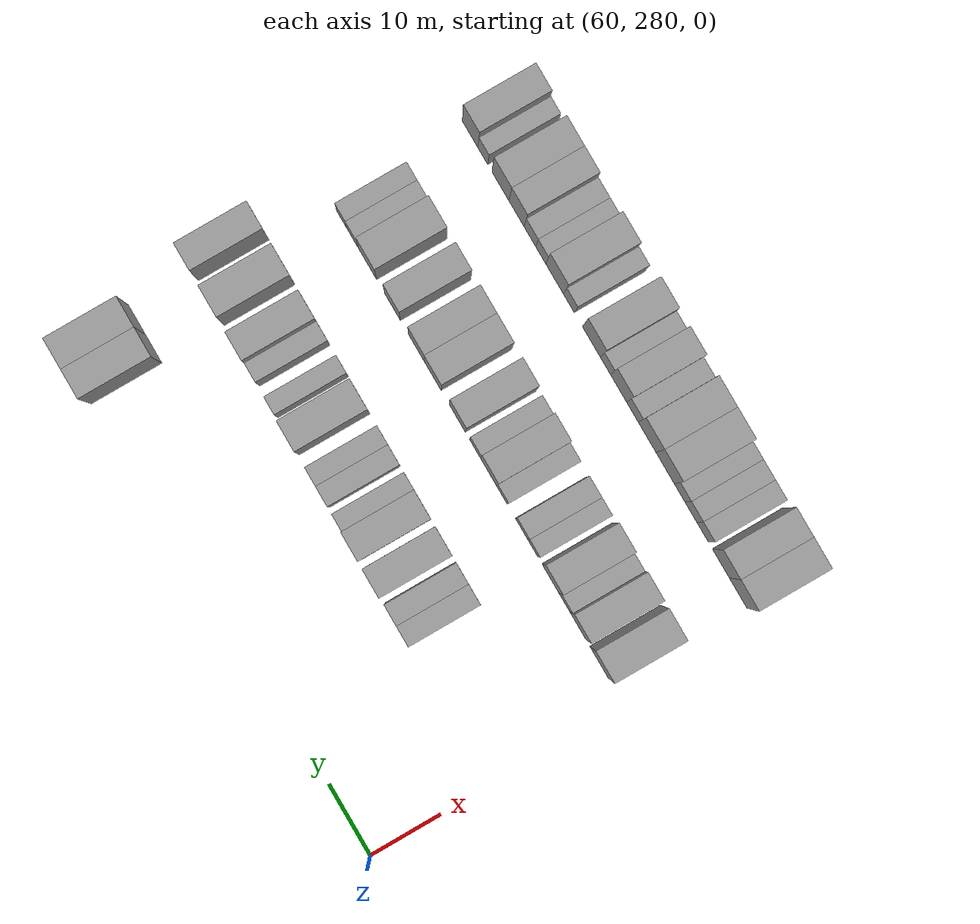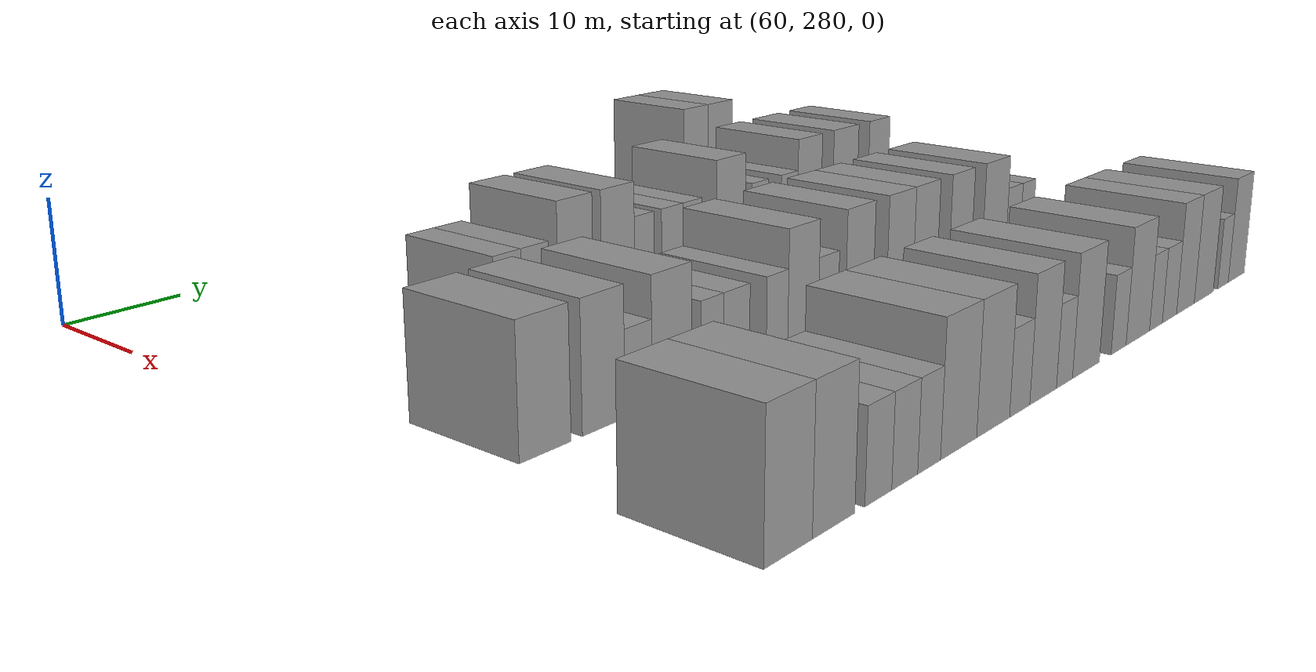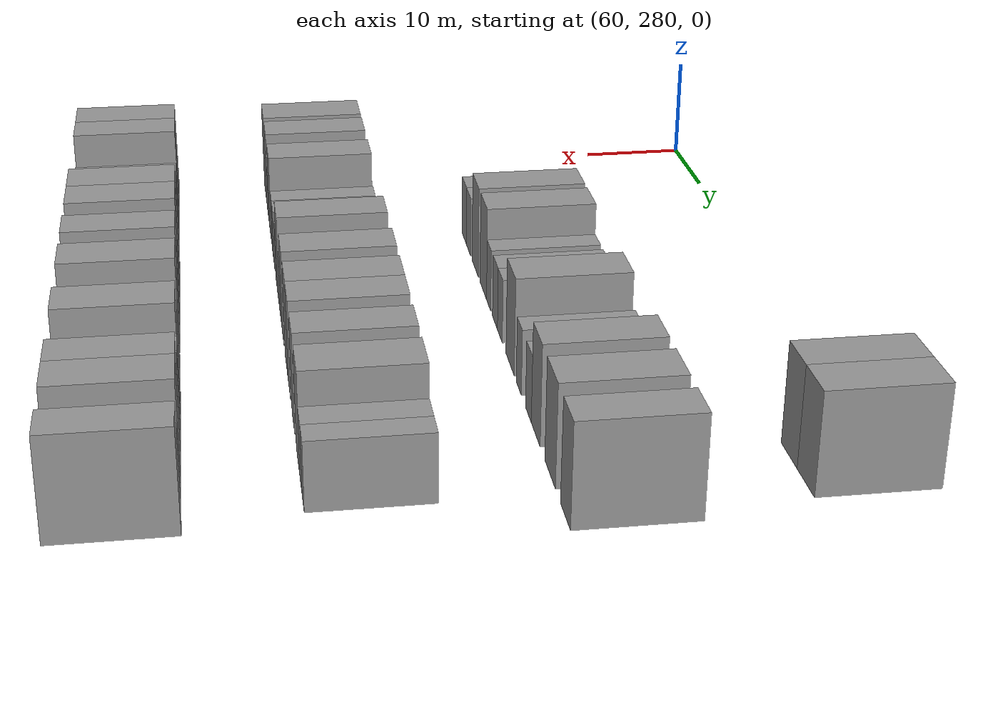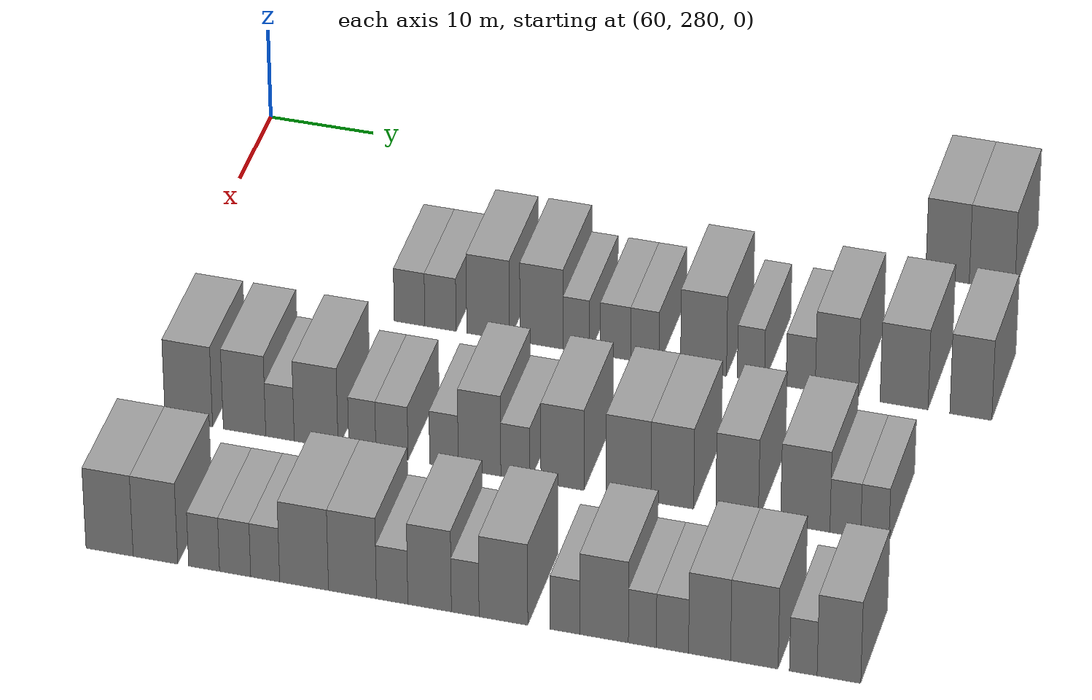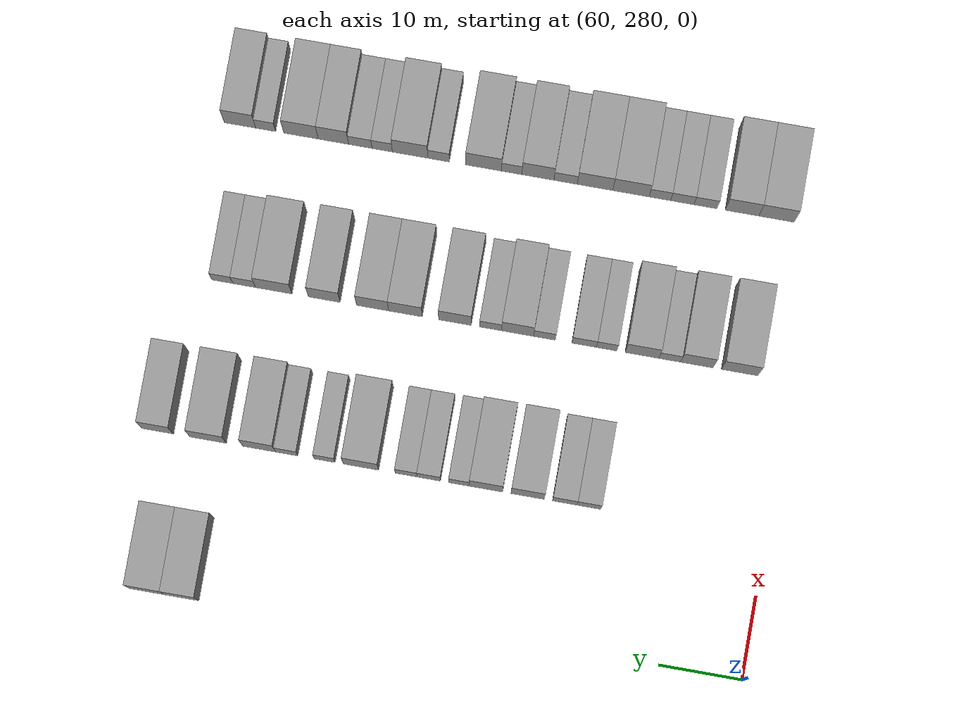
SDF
<sdf version="1.6">
 <world name="default">
  <model name="building_520">
   <static>1</static>
   <pose>63.0000 347.0267 0 0.000000 0.000000 0.000000</pose>
   <link name="link">
    <pose>0 0 4.50 0 0 0</pose>
    <collision name="collision"><geometry><box><size>10.0000 4.0749 9.0000</size></box></geometry></collision>
    <visual name="visual">
     <cast_shadows>0</cast_shadows>
     <geometry><box><size>10.0000 4.0749 9.0000</size></box></geometry>
     <material>
      <script>
       <uri>model://grey_wall/materials/scripts</uri>
       <uri>model://grey_wall/materials/textures</uri>
       <name>vrc/grey_wall</name>
      </script>
     </material>
    </visual>
   </link>
  </model>
  <model name="building_521">
   <static>1</static>
   <pose>63.0000 351.1937 0 0.000000 0.000000 0.000000</pose>
   <link name="link">
    <pose>0 0 4.50 0 0 0</pose>
    <collision name="collision"><geometry><box><size>10.0000 4.2590 9.0000</size></box></geometry></collision>
    <visual name="visual">
     <cast_shadows>0</cast_shadows>
     <geometry><box><size>10.0000 4.2590 9.0000</size></box></geometry>
     <material>
      <script>
       <uri>model://grey_wall/materials/scripts</uri>
       <uri>model://grey_wall/materials/textures</uri>
       <name>vrc/grey_wall</name>
      </script>
     </material>
    </visual>
   </link>
  </model>
  <model name="building_683">
   <static>1</static>
   <pose>82.0000 301.3612 0 0.000000 0.000000 0.000000</pose>
   <link name="link">
    <pose>0 0 3.00 0 0 0</pose>
    <collision name="collision"><geometry><box><size>10.0000 2.8845 6.0000</size></box></geometry></collision>
    <visual name="visual">
     <cast_shadows>0</cast_shadows>
     <geometry><box><size>10.0000 2.8845 6.0000</size></box></geometry>
     <material>
      <script>
       <uri>model://grey_wall/materials/scripts</uri>
       <uri>model://grey_wall/materials/textures</uri>
       <name>vrc/grey_wall</name>
      </script>
     </material>
    </visual>
   </link>
  </model>
  <model name="building_684">
   <static>1</static>
   <pose>82.0000 304.2771 0 0.000000 0.000000 0.000000</pose>
   <link name="link">
    <pose>0 0 3.00 0 0 0</pose>
    <collision name="collision"><geometry><box><size>10.0000 2.9472 6.0000</size></box></geometry></collision>
    <visual name="visual">
     <cast_shadows>0</cast_shadows>
     <geometry><box><size>10.0000 2.9472 6.0000</size></box></geometry>
     <material>
      <script>
       <uri>model://grey_wall/materials/scripts</uri>
       <uri>model://grey_wall/materials/textures</uri>
       <name>vrc/grey_wall</name>
      </script>
     </material>
    </visual>
   </link>
  </model>
  <model name="building_685">
   <static>1</static>
   <pose>82.0000 308.7541 0 0.000000 0.000000 0.000000</pose>
   <link name="link">
    <pose>0 0 4.50 0 0 0</pose>
    <collision name="collision"><geometry><box><size>10.0000 4.0069 9.0000</size></box></geometry></collision>
    <visual name="visual">
     <cast_shadows>0</cast_shadows>
     <geometry><box><size>10.0000 4.0069 9.0000</size></box></geometry>
     <material>
      <script>
       <uri>model://grey_wall/materials/scripts</uri>
       <uri>model://grey_wall/materials/textures</uri>
       <name>vrc/grey_wall</name>
      </script>
     </material>
    </visual>
   </link>
  </model>
  <model name="building_686">
   <static>1</static>
   <pose>82.0000 313.7742 0 0.000000 0.000000 0.000000</pose>
   <link name="link">
    <pose>0 0 4.50 0 0 0</pose>
    <collision name="collision"><geometry><box><size>10.0000 4.0332 9.0000</size></box></geometry></collision>
    <visual name="visual">
     <cast_shadows>0</cast_shadows>
     <geometry><box><size>10.0000 4.0332 9.0000</size></box></geometry>
     <material>
      <script>
       <uri>model://grey_wall/materials/scripts</uri>
       <uri>model://grey_wall/materials/textures</uri>
       <name>vrc/grey_wall</name>
      </script>
     </material>
    </visual>
   </link>
  </model>
  <model name="building_687">
   <static>1</static>
   <pose>82.0000 317.0277 0 0.000000 0.000000 0.000000</pose>
   <link name="link">
    <pose>0 0 3.00 0 0 0</pose>
    <collision name="collision"><geometry><box><size>10.0000 2.4738 6.0000</size></box></geometry></collision>
    <visual name="visual">
     <cast_shadows>0</cast_shadows>
     <geometry><box><size>10.0000 2.4738 6.0000</size></box></geometry>
     <material>
      <script>
       <uri>model://grey_wall/materials/scripts</uri>
       <uri>model://grey_wall/materials/textures</uri>
       <name>vrc/grey_wall</name>
      </script>
     </material>
    </visual>
   </link>
  </model>
  <model name="building_688">
   <static>1</static>
   <pose>82.0000 320.6768 0 0.000000 0.000000 0.000000</pose>
   <link name="link">
    <pose>0 0 3.00 0 0 0</pose>
    <collision name="collision"><geometry><box><size>10.0000 2.8245 6.0000</size></box></geometry></collision>
    <visual name="visual">
     <cast_shadows>0</cast_shadows>
     <geometry><box><size>10.0000 2.8245 6.0000</size></box></geometry>
     <material>
      <script>
       <uri>model://grey_wall/materials/scripts</uri>
       <uri>model://grey_wall/materials/textures</uri>
       <name>vrc/grey_wall</name>
      </script>
     </material>
    </visual>
   </link>
  </model>
  <model name="building_689">
   <static>1</static>
   <pose>82.0000 323.4099 0 0.000000 0.000000 0.000000</pose>
   <link name="link">
    <pose>0 0 3.00 0 0 0</pose>
    <collision name="collision"><geometry><box><size>10.0000 2.6417 6.0000</size></box></geometry></collision>
    <visual name="visual">
     <cast_shadows>0</cast_shadows>
     <geometry><box><size>10.0000 2.6417 6.0000</size></box></geometry>
     <material>
      <script>
       <uri>model://grey_wall/materials/scripts</uri>
       <uri>model://grey_wall/materials/textures</uri>
       <name>vrc/grey_wall</name>
      </script>
     </material>
    </visual>
   </link>
  </model>
  <model name="building_690">
   <static>1</static>
   <pose>82.0000 328.8628 0 0.000000 0.000000 0.000000</pose>
   <link name="link">
    <pose>0 0 4.50 0 0 0</pose>
    <collision name="collision"><geometry><box><size>10.0000 4.2643 9.0000</size></box></geometry></collision>
    <visual name="visual">
     <cast_shadows>0</cast_shadows>
     <geometry><box><size>10.0000 4.2643 9.0000</size></box></geometry>
     <material>
      <script>
       <uri>model://grey_wall/materials/scripts</uri>
       <uri>model://grey_wall/materials/textures</uri>
       <name>vrc/grey_wall</name>
      </script>
     </material>
    </visual>
   </link>
  </model>
  <model name="building_691">
   <static>1</static>
   <pose>82.0000 333.2507 0 0.000000 0.000000 0.000000</pose>
   <link name="link">
    <pose>0 0 3.00 0 0 0</pose>
    <collision name="collision"><geometry><box><size>10.0000 2.5115 6.0000</size></box></geometry></collision>
    <visual name="visual">
     <cast_shadows>0</cast_shadows>
     <geometry><box><size>10.0000 2.5115 6.0000</size></box></geometry>
     <material>
      <script>
       <uri>model://grey_wall/materials/scripts</uri>
       <uri>model://grey_wall/materials/textures</uri>
       <name>vrc/grey_wall</name>
      </script>
     </material>
    </visual>
   </link>
  </model>
  <model name="building_692">
   <static>1</static>
   <pose>82.0000 337.8518 0 0.000000 0.000000 0.000000</pose>
   <link name="link">
    <pose>0 0 3.00 0 0 0</pose>
    <collision name="collision"><geometry><box><size>10.0000 2.6907 6.0000</size></box></geometry></collision>
    <visual name="visual">
     <cast_shadows>0</cast_shadows>
     <geometry><box><size>10.0000 2.6907 6.0000</size></box></geometry>
     <material>
      <script>
       <uri>model://grey_wall/materials/scripts</uri>
       <uri>model://grey_wall/materials/textures</uri>
       <name>vrc/grey_wall</name>
      </script>
     </material>
    </visual>
   </link>
  </model>
  <model name="building_693">
   <static>1</static>
   <pose>82.0000 341.1807 0 0.000000 0.000000 0.000000</pose>
   <link name="link">
    <pose>0 0 4.50 0 0 0</pose>
    <collision name="collision"><geometry><box><size>10.0000 3.9673 9.0000</size></box></geometry></collision>
    <visual name="visual">
     <cast_shadows>0</cast_shadows>
     <geometry><box><size>10.0000 3.9673 9.0000</size></box></geometry>
     <material>
      <script>
       <uri>model://grey_wall/materials/scripts</uri>
       <uri>model://grey_wall/materials/textures</uri>
       <name>vrc/grey_wall</name>
      </script>
     </material>
    </visual>
   </link>
  </model>
  <model name="building_694">
   <static>1</static>
   <pose>82.0000 347.3627 0 0.000000 0.000000 0.000000</pose>
   <link name="link">
    <pose>0 0 4.50 0 0 0</pose>
    <collision name="collision"><geometry><box><size>10.0000 4.3966 9.0000</size></box></geometry></collision>
    <visual name="visual">
     <cast_shadows>0</cast_shadows>
     <geometry><box><size>10.0000 4.3966 9.0000</size></box></geometry>
     <material>
      <script>
       <uri>model://grey_wall/materials/scripts</uri>
       <uri>model://grey_wall/materials/textures</uri>
       <name>vrc/grey_wall</name>
      </script>
     </material>
    </visual>
   </link>
  </model>
  <model name="building_695">
   <static>1</static>
   <pose>82.0000 353.4793 0 0.000000 0.000000 0.000000</pose>
   <link name="link">
    <pose>0 0 4.50 0 0 0</pose>
    <collision name="collision"><geometry><box><size>10.0000 3.8367 9.0000</size></box></geometry></collision>
    <visual name="visual">
     <cast_shadows>0</cast_shadows>
     <geometry><box><size>10.0000 3.8367 9.0000</size></box></geometry>
     <material>
      <script>
       <uri>model://grey_wall/materials/scripts</uri>
       <uri>model://grey_wall/materials/textures</uri>
       <name>vrc/grey_wall</name>
      </script>
     </material>
    </visual>
   </link>
  </model>
  <model name="building_854">
   <static>1</static>
   <pose>101.0000 286.3800 0 0.000000 0.000000 0.000000</pose>
   <link name="link">
    <pose>0 0 4.50 0 0 0</pose>
    <collision name="collision"><geometry><box><size>10.0000 4.4240 9.0000</size></box></geometry></collision>
    <visual name="visual">
     <cast_shadows>0</cast_shadows>
     <geometry><box><size>10.0000 4.4240 9.0000</size></box></geometry>
     <material>
      <script>
       <uri>model://grey_wall/materials/scripts</uri>
       <uri>model://grey_wall/materials/textures</uri>
       <name>vrc/grey_wall</name>
      </script>
     </material>
    </visual>
   </link>
  </model>
  <model name="building_855">
   <static>1</static>
   <pose>101.0000 291.5675 0 0.000000 0.000000 0.000000</pose>
   <link name="link">
    <pose>0 0 4.50 0 0 0</pose>
    <collision name="collision"><geometry><box><size>10.0000 3.9511 9.0000</size></box></geometry></collision>
    <visual name="visual">
     <cast_shadows>0</cast_shadows>
     <geometry><box><size>10.0000 3.9511 9.0000</size></box></geometry>
     <material>
      <script>
       <uri>model://grey_wall/materials/scripts</uri>
       <uri>model://grey_wall/materials/textures</uri>
       <name>vrc/grey_wall</name>
      </script>
     </material>
    </visual>
   </link>
  </model>
  <model name="building_856">
   <static>1</static>
   <pose>101.0000 294.8647 0 0.000000 0.000000 0.000000</pose>
   <link name="link">
    <pose>0 0 3.00 0 0 0</pose>
    <collision name="collision"><geometry><box><size>10.0000 2.6434 6.0000</size></box></geometry></collision>
    <visual name="visual">
     <cast_shadows>0</cast_shadows>
     <geometry><box><size>10.0000 2.6434 6.0000</size></box></geometry>
     <material>
      <script>
       <uri>model://grey_wall/materials/scripts</uri>
       <uri>model://grey_wall/materials/textures</uri>
       <name>vrc/grey_wall</name>
      </script>
     </material>
    </visual>
   </link>
  </model>
  <model name="building_857">
   <static>1</static>
   <pose>101.0000 298.2179 0 0.000000 0.000000 0.000000</pose>
   <link name="link">
    <pose>0 0 4.50 0 0 0</pose>
    <collision name="collision"><geometry><box><size>10.0000 4.0630 9.0000</size></box></geometry></collision>
    <visual name="visual">
     <cast_shadows>0</cast_shadows>
     <geometry><box><size>10.0000 4.0630 9.0000</size></box></geometry>
     <material>
      <script>
       <uri>model://grey_wall/materials/scripts</uri>
       <uri>model://grey_wall/materials/textures</uri>
       <name>vrc/grey_wall</name>
      </script>
     </material>
    </visual>
   </link>
  </model>
  <model name="building_858">
   <static>1</static>
   <pose>101.0000 302.4965 0 0.000000 0.000000 0.000000</pose>
   <link name="link">
    <pose>0 0 3.00 0 0 0</pose>
    <collision name="collision"><geometry><box><size>10.0000 2.4941 6.0000</size></box></geometry></collision>
    <visual name="visual">
     <cast_shadows>0</cast_shadows>
     <geometry><box><size>10.0000 2.4941 6.0000</size></box></geometry>
     <material>
      <script>
       <uri>model://grey_wall/materials/scripts</uri>
       <uri>model://grey_wall/materials/textures</uri>
       <name>vrc/grey_wall</name>
      </script>
     </material>
    </visual>
   </link>
  </model>
  <model name="building_859">
   <static>1</static>
   <pose>101.0000 305.2281 0 0.000000 0.000000 0.000000</pose>
   <link name="link">
    <pose>0 0 3.00 0 0 0</pose>
    <collision name="collision"><geometry><box><size>10.0000 2.9692 6.0000</size></box></geometry></collision>
    <visual name="visual">
     <cast_shadows>0</cast_shadows>
     <geometry><box><size>10.0000 2.9692 6.0000</size></box></geometry>
     <material>
      <script>
       <uri>model://grey_wall/materials/scripts</uri>
       <uri>model://grey_wall/materials/textures</uri>
       <name>vrc/grey_wall</name>
      </script>
     </material>
    </visual>
   </link>
  </model>
  <model name="building_860">
   <static>1</static>
   <pose>101.0000 310.0265 0 0.000000 0.000000 0.000000</pose>
   <link name="link">
    <pose>0 0 3.00 0 0 0</pose>
    <collision name="collision"><geometry><box><size>10.0000 2.6277 6.0000</size></box></geometry></collision>
    <visual name="visual">
     <cast_shadows>0</cast_shadows>
     <geometry><box><size>10.0000 2.6277 6.0000</size></box></geometry>
     <material>
      <script>
       <uri>model://grey_wall/materials/scripts</uri>
       <uri>model://grey_wall/materials/textures</uri>
       <name>vrc/grey_wall</name>
      </script>
     </material>
    </visual>
   </link>
  </model>
  <model name="building_861">
   <static>1</static>
   <pose>101.0000 313.2916 0 0.000000 0.000000 0.000000</pose>
   <link name="link">
    <pose>0 0 4.50 0 0 0</pose>
    <collision name="collision"><geometry><box><size>10.0000 3.9025 9.0000</size></box></geometry></collision>
    <visual name="visual">
     <cast_shadows>0</cast_shadows>
     <geometry><box><size>10.0000 3.9025 9.0000</size></box></geometry>
     <material>
      <script>
       <uri>model://grey_wall/materials/scripts</uri>
       <uri>model://grey_wall/materials/textures</uri>
       <name>vrc/grey_wall</name>
      </script>
     </material>
    </visual>
   </link>
  </model>
  <model name="building_862">
   <static>1</static>
   <pose>101.0000 316.5770 0 0.000000 0.000000 0.000000</pose>
   <link name="link">
    <pose>0 0 3.00 0 0 0</pose>
    <collision name="collision"><geometry><box><size>10.0000 2.6684 6.0000</size></box></geometry></collision>
    <visual name="visual">
     <cast_shadows>0</cast_shadows>
     <geometry><box><size>10.0000 2.6684 6.0000</size></box></geometry>
     <material>
      <script>
       <uri>model://grey_wall/materials/scripts</uri>
       <uri>model://grey_wall/materials/textures</uri>
       <name>vrc/grey_wall</name>
      </script>
     </material>
    </visual>
   </link>
  </model>
  <model name="building_863">
   <static>1</static>
   <pose>101.0000 320.8831 0 0.000000 0.000000 0.000000</pose>
   <link name="link">
    <pose>0 0 4.50 0 0 0</pose>
    <collision name="collision"><geometry><box><size>10.0000 3.9438 9.0000</size></box></geometry></collision>
    <visual name="visual">
     <cast_shadows>0</cast_shadows>
     <geometry><box><size>10.0000 3.9438 9.0000</size></box></geometry>
     <material>
      <script>
       <uri>model://grey_wall/materials/scripts</uri>
       <uri>model://grey_wall/materials/textures</uri>
       <name>vrc/grey_wall</name>
      </script>
     </material>
    </visual>
   </link>
  </model>
  <model name="building_864">
   <static>1</static>
   <pose>101.0000 326.8943 0 0.000000 0.000000 0.000000</pose>
   <link name="link">
    <pose>0 0 4.50 0 0 0</pose>
    <collision name="collision"><geometry><box><size>10.0000 4.0785 9.0000</size></box></geometry></collision>
    <visual name="visual">
     <cast_shadows>0</cast_shadows>
     <geometry><box><size>10.0000 4.0785 9.0000</size></box></geometry>
     <material>
      <script>
       <uri>model://grey_wall/materials/scripts</uri>
       <uri>model://grey_wall/materials/textures</uri>
       <name>vrc/grey_wall</name>
      </script>
     </material>
    </visual>
   </link>
  </model>
  <model name="building_865">
   <static>1</static>
   <pose>101.0000 330.8770 0 0.000000 0.000000 0.000000</pose>
   <link name="link">
    <pose>0 0 4.50 0 0 0</pose>
    <collision name="collision"><geometry><box><size>10.0000 3.8870 9.0000</size></box></geometry></collision>
    <visual name="visual">
     <cast_shadows>0</cast_shadows>
     <geometry><box><size>10.0000 3.8870 9.0000</size></box></geometry>
     <material>
      <script>
       <uri>model://grey_wall/materials/scripts</uri>
       <uri>model://grey_wall/materials/textures</uri>
       <name>vrc/grey_wall</name>
      </script>
     </material>
    </visual>
   </link>
  </model>
  <model name="building_866">
   <static>1</static>
   <pose>101.0000 336.7476 0 0.000000 0.000000 0.000000</pose>
   <link name="link">
    <pose>0 0 4.50 0 0 0</pose>
    <collision name="collision"><geometry><box><size>10.0000 3.8543 9.0000</size></box></geometry></collision>
    <visual name="visual">
     <cast_shadows>0</cast_shadows>
     <geometry><box><size>10.0000 3.8543 9.0000</size></box></geometry>
     <material>
      <script>
       <uri>model://grey_wall/materials/scripts</uri>
       <uri>model://grey_wall/materials/textures</uri>
       <name>vrc/grey_wall</name>
      </script>
     </material>
    </visual>
   </link>
  </model>
  <model name="building_867">
   <static>1</static>
   <pose>101.0000 342.8954 0 0.000000 0.000000 0.000000</pose>
   <link name="link">
    <pose>0 0 4.50 0 0 0</pose>
    <collision name="collision"><geometry><box><size>10.0000 4.4412 9.0000</size></box></geometry></collision>
    <visual name="visual">
     <cast_shadows>0</cast_shadows>
     <geometry><box><size>10.0000 4.4412 9.0000</size></box></geometry>
     <material>
      <script>
       <uri>model://grey_wall/materials/scripts</uri>
       <uri>model://grey_wall/materials/textures</uri>
       <name>vrc/grey_wall</name>
      </script>
     </material>
    </visual>
   </link>
  </model>
  <model name="building_868">
   <static>1</static>
   <pose>101.0000 346.4986 0 0.000000 0.000000 0.000000</pose>
   <link name="link">
    <pose>0 0 3.00 0 0 0</pose>
    <collision name="collision"><geometry><box><size>10.0000 2.7653 6.0000</size></box></geometry></collision>
    <visual name="visual">
     <cast_shadows>0</cast_shadows>
     <geometry><box><size>10.0000 2.7653 6.0000</size></box></geometry>
     <material>
      <script>
       <uri>model://grey_wall/materials/scripts</uri>
       <uri>model://grey_wall/materials/textures</uri>
       <name>vrc/grey_wall</name>
      </script>
     </material>
    </visual>
   </link>
  </model>
  <model name="building_869">
   <static>1</static>
   <pose>101.0000 349.1480 0 0.000000 0.000000 0.000000</pose>
   <link name="link">
    <pose>0 0 3.00 0 0 0</pose>
    <collision name="collision"><geometry><box><size>10.0000 2.5336 6.0000</size></box></geometry></collision>
    <visual name="visual">
     <cast_shadows>0</cast_shadows>
     <geometry><box><size>10.0000 2.5336 6.0000</size></box></geometry>
     <material>
      <script>
       <uri>model://grey_wall/materials/scripts</uri>
       <uri>model://grey_wall/materials/textures</uri>
       <name>vrc/grey_wall</name>
      </script>
     </material>
    </visual>
   </link>
  </model>
  <model name="building_1035">
   <static>1</static>
   <pose>120.0000 285.1234 0 0.000000 0.000000 0.000000</pose>
   <link name="link">
    <pose>0 0 4.50 0 0 0</pose>
    <collision name="collision"><geometry><box><size>10.0000 4.3125 9.0000</size></box></geometry></collision>
    <visual name="visual">
     <cast_shadows>0</cast_shadows>
     <geometry><box><size>10.0000 4.3125 9.0000</size></box></geometry>
     <material>
      <script>
       <uri>model://grey_wall/materials/scripts</uri>
       <uri>model://grey_wall/materials/textures</uri>
       <name>vrc/grey_wall</name>
      </script>
     </material>
    </visual>
   </link>
  </model>
  <model name="building_1036">
   <static>1</static>
   <pose>120.0000 289.3146 0 0.000000 0.000000 0.000000</pose>
   <link name="link">
    <pose>0 0 4.50 0 0 0</pose>
    <collision name="collision"><geometry><box><size>10.0000 4.0697 9.0000</size></box></geometry></collision>
    <visual name="visual">
     <cast_shadows>0</cast_shadows>
     <geometry><box><size>10.0000 4.0697 9.0000</size></box></geometry>
     <material>
      <script>
       <uri>model://grey_wall/materials/scripts</uri>
       <uri>model://grey_wall/materials/textures</uri>
       <name>vrc/grey_wall</name>
      </script>
     </material>
    </visual>
   </link>
  </model>
  <model name="building_1037">
   <static>1</static>
   <pose>120.0000 293.7526 0 0.000000 0.000000 0.000000</pose>
   <link name="link">
    <pose>0 0 3.00 0 0 0</pose>
    <collision name="collision"><geometry><box><size>10.0000 2.8065 6.0000</size></box></geometry></collision>
    <visual name="visual">
     <cast_shadows>0</cast_shadows>
     <geometry><box><size>10.0000 2.8065 6.0000</size></box></geometry>
     <material>
      <script>
       <uri>model://grey_wall/materials/scripts</uri>
       <uri>model://grey_wall/materials/textures</uri>
       <name>vrc/grey_wall</name>
      </script>
     </material>
    </visual>
   </link>
  </model>
  <model name="building_1038">
   <static>1</static>
   <pose>120.0000 296.5740 0 0.000000 0.000000 0.000000</pose>
   <link name="link">
    <pose>0 0 3.00 0 0 0</pose>
    <collision name="collision"><geometry><box><size>10.0000 2.8362 6.0000</size></box></geometry></collision>
    <visual name="visual">
     <cast_shadows>0</cast_shadows>
     <geometry><box><size>10.0000 2.8362 6.0000</size></box></geometry>
     <material>
      <script>
       <uri>model://grey_wall/materials/scripts</uri>
       <uri>model://grey_wall/materials/textures</uri>
       <name>vrc/grey_wall</name>
      </script>
     </material>
    </visual>
   </link>
  </model>
  <model name="building_1039">
   <static>1</static>
   <pose>120.0000 299.3041 0 0.000000 0.000000 0.000000</pose>
   <link name="link">
    <pose>0 0 3.00 0 0 0</pose>
    <collision name="collision"><geometry><box><size>10.0000 2.6240 6.0000</size></box></geometry></collision>
    <visual name="visual">
     <cast_shadows>0</cast_shadows>
     <geometry><box><size>10.0000 2.6240 6.0000</size></box></geometry>
     <material>
      <script>
       <uri>model://grey_wall/materials/scripts</uri>
       <uri>model://grey_wall/materials/textures</uri>
       <name>vrc/grey_wall</name>
      </script>
     </material>
    </visual>
   </link>
  </model>
  <model name="building_1040">
   <static>1</static>
   <pose>120.0000 302.8276 0 0.000000 0.000000 0.000000</pose>
   <link name="link">
    <pose>0 0 4.50 0 0 0</pose>
    <collision name="collision"><geometry><box><size>10.0000 4.4232 9.0000</size></box></geometry></collision>
    <visual name="visual">
     <cast_shadows>0</cast_shadows>
     <geometry><box><size>10.0000 4.4232 9.0000</size></box></geometry>
     <material>
      <script>
       <uri>model://grey_wall/materials/scripts</uri>
       <uri>model://grey_wall/materials/textures</uri>
       <name>vrc/grey_wall</name>
      </script>
     </material>
    </visual>
   </link>
  </model>
  <model name="building_1041">
   <static>1</static>
   <pose>120.0000 307.2035 0 0.000000 0.000000 0.000000</pose>
   <link name="link">
    <pose>0 0 4.50 0 0 0</pose>
    <collision name="collision"><geometry><box><size>10.0000 4.3286 9.0000</size></box></geometry></collision>
    <visual name="visual">
     <cast_shadows>0</cast_shadows>
     <geometry><box><size>10.0000 4.3286 9.0000</size></box></geometry>
     <material>
      <script>
       <uri>model://grey_wall/materials/scripts</uri>
       <uri>model://grey_wall/materials/textures</uri>
       <name>vrc/grey_wall</name>
      </script>
     </material>
    </visual>
   </link>
  </model>
  <model name="building_1042">
   <static>1</static>
   <pose>120.0000 310.7797 0 0.000000 0.000000 0.000000</pose>
   <link name="link">
    <pose>0 0 3.00 0 0 0</pose>
    <collision name="collision"><geometry><box><size>10.0000 2.8237 6.0000</size></box></geometry></collision>
    <visual name="visual">
     <cast_shadows>0</cast_shadows>
     <geometry><box><size>10.0000 2.8237 6.0000</size></box></geometry>
     <material>
      <script>
       <uri>model://grey_wall/materials/scripts</uri>
       <uri>model://grey_wall/materials/textures</uri>
       <name>vrc/grey_wall</name>
      </script>
     </material>
    </visual>
   </link>
  </model>
  <model name="building_1043">
   <static>1</static>
   <pose>120.0000 314.1472 0 0.000000 0.000000 0.000000</pose>
   <link name="link">
    <pose>0 0 4.50 0 0 0</pose>
    <collision name="collision"><geometry><box><size>10.0000 3.9114 9.0000</size></box></geometry></collision>
    <visual name="visual">
     <cast_shadows>0</cast_shadows>
     <geometry><box><size>10.0000 3.9114 9.0000</size></box></geometry>
     <material>
      <script>
       <uri>model://grey_wall/materials/scripts</uri>
       <uri>model://grey_wall/materials/textures</uri>
       <name>vrc/grey_wall</name>
      </script>
     </material>
    </visual>
   </link>
  </model>
  <model name="building_1044">
   <static>1</static>
   <pose>120.0000 317.3422 0 0.000000 0.000000 0.000000</pose>
   <link name="link">
    <pose>0 0 3.00 0 0 0</pose>
    <collision name="collision"><geometry><box><size>10.0000 2.4785 6.0000</size></box></geometry></collision>
    <visual name="visual">
     <cast_shadows>0</cast_shadows>
     <geometry><box><size>10.0000 2.4785 6.0000</size></box></geometry>
     <material>
      <script>
       <uri>model://grey_wall/materials/scripts</uri>
       <uri>model://grey_wall/materials/textures</uri>
       <name>vrc/grey_wall</name>
      </script>
     </material>
    </visual>
   </link>
  </model>
  <model name="building_1045">
   <static>1</static>
   <pose>120.0000 320.7619 0 0.000000 0.000000 0.000000</pose>
   <link name="link">
    <pose>0 0 4.50 0 0 0</pose>
    <collision name="collision"><geometry><box><size>10.0000 4.3609 9.0000</size></box></geometry></collision>
    <visual name="visual">
     <cast_shadows>0</cast_shadows>
     <geometry><box><size>10.0000 4.3609 9.0000</size></box></geometry>
     <material>
      <script>
       <uri>model://grey_wall/materials/scripts</uri>
       <uri>model://grey_wall/materials/textures</uri>
       <name>vrc/grey_wall</name>
      </script>
     </material>
    </visual>
   </link>
  </model>
  <model name="building_1046">
   <static>1</static>
   <pose>120.0000 326.2558 0 0.000000 0.000000 0.000000</pose>
   <link name="link">
    <pose>0 0 3.00 0 0 0</pose>
    <collision name="collision"><geometry><box><size>10.0000 2.6270 6.0000</size></box></geometry></collision>
    <visual name="visual">
     <cast_shadows>0</cast_shadows>
     <geometry><box><size>10.0000 2.6270 6.0000</size></box></geometry>
     <material>
      <script>
       <uri>model://grey_wall/materials/scripts</uri>
       <uri>model://grey_wall/materials/textures</uri>
       <name>vrc/grey_wall</name>
      </script>
     </material>
    </visual>
   </link>
  </model>
  <model name="building_1047">
   <static>1</static>
   <pose>120.0000 329.7317 0 0.000000 0.000000 0.000000</pose>
   <link name="link">
    <pose>0 0 4.50 0 0 0</pose>
    <collision name="collision"><geometry><box><size>10.0000 4.3247 9.0000</size></box></geometry></collision>
    <visual name="visual">
     <cast_shadows>0</cast_shadows>
     <geometry><box><size>10.0000 4.3247 9.0000</size></box></geometry>
     <material>
      <script>
       <uri>model://grey_wall/materials/scripts</uri>
       <uri>model://grey_wall/materials/textures</uri>
       <name>vrc/grey_wall</name>
      </script>
     </material>
    </visual>
   </link>
  </model>
  <model name="building_1048">
   <static>1</static>
   <pose>120.0000 333.1370 0 0.000000 0.000000 0.000000</pose>
   <link name="link">
    <pose>0 0 3.00 0 0 0</pose>
    <collision name="collision"><geometry><box><size>10.0000 2.4860 6.0000</size></box></geometry></collision>
    <visual name="visual">
     <cast_shadows>0</cast_shadows>
     <geometry><box><size>10.0000 2.4860 6.0000</size></box></geometry>
     <material>
      <script>
       <uri>model://grey_wall/materials/scripts</uri>
       <uri>model://grey_wall/materials/textures</uri>
       <name>vrc/grey_wall</name>
      </script>
     </material>
    </visual>
   </link>
  </model>
  <model name="building_1049">
   <static>1</static>
   <pose>120.0000 335.8047 0 0.000000 0.000000 0.000000</pose>
   <link name="link">
    <pose>0 0 3.00 0 0 0</pose>
    <collision name="collision"><geometry><box><size>10.0000 2.8494 6.0000</size></box></geometry></collision>
    <visual name="visual">
     <cast_shadows>0</cast_shadows>
     <geometry><box><size>10.0000 2.8494 6.0000</size></box></geometry>
     <material>
      <script>
       <uri>model://grey_wall/materials/scripts</uri>
       <uri>model://grey_wall/materials/textures</uri>
       <name>vrc/grey_wall</name>
      </script>
     </material>
    </visual>
   </link>
  </model>
  <model name="building_1050">
   <static>1</static>
   <pose>120.0000 339.0840 0 0.000000 0.000000 0.000000</pose>
   <link name="link">
    <pose>0 0 4.50 0 0 0</pose>
    <collision name="collision"><geometry><box><size>10.0000 3.7092 9.0000</size></box></geometry></collision>
    <visual name="visual">
     <cast_shadows>0</cast_shadows>
     <geometry><box><size>10.0000 3.7092 9.0000</size></box></geometry>
     <material>
      <script>
       <uri>model://grey_wall/materials/scripts</uri>
       <uri>model://grey_wall/materials/textures</uri>
       <name>vrc/grey_wall</name>
      </script>
     </material>
    </visual>
   </link>
  </model>
  <model name="building_1051">
   <static>1</static>
   <pose>120.0000 343.0362 0 0.000000 0.000000 0.000000</pose>
   <link name="link">
    <pose>0 0 4.50 0 0 0</pose>
    <collision name="collision"><geometry><box><size>10.0000 4.1952 9.0000</size></box></geometry></collision>
    <visual name="visual">
     <cast_shadows>0</cast_shadows>
     <geometry><box><size>10.0000 4.1952 9.0000</size></box></geometry>
     <material>
      <script>
       <uri>model://grey_wall/materials/scripts</uri>
       <uri>model://grey_wall/materials/textures</uri>
       <name>vrc/grey_wall</name>
      </script>
     </material>
    </visual>
   </link>
  </model>
  <model name="building_1052">
   <static>1</static>
   <pose>120.0000 347.3491 0 0.000000 0.000000 0.000000</pose>
   <link name="link">
    <pose>0 0 3.00 0 0 0</pose>
    <collision name="collision"><geometry><box><size>10.0000 2.4306 6.0000</size></box></geometry></collision>
    <visual name="visual">
     <cast_shadows>0</cast_shadows>
     <geometry><box><size>10.0000 2.4306 6.0000</size></box></geometry>
     <material>
      <script>
       <uri>model://grey_wall/materials/scripts</uri>
       <uri>model://grey_wall/materials/textures</uri>
       <name>vrc/grey_wall</name>
      </script>
     </material>
    </visual>
   </link>
  </model>
  <model name="building_1053">
   <static>1</static>
   <pose>120.0000 350.4799 0 0.000000 0.000000 0.000000</pose>
   <link name="link">
    <pose>0 0 4.50 0 0 0</pose>
    <collision name="collision"><geometry><box><size>10.0000 3.8310 9.0000</size></box></geometry></collision>
    <visual name="visual">
     <cast_shadows>0</cast_shadows>
     <geometry><box><size>10.0000 3.8310 9.0000</size></box></geometry>
     <material>
      <script>
       <uri>model://grey_wall/materials/scripts</uri>
       <uri>model://grey_wall/materials/textures</uri>
       <name>vrc/grey_wall</name>
      </script>
     </material>
    </visual>
   </link>
  </model>
 </world>
</sdf>
